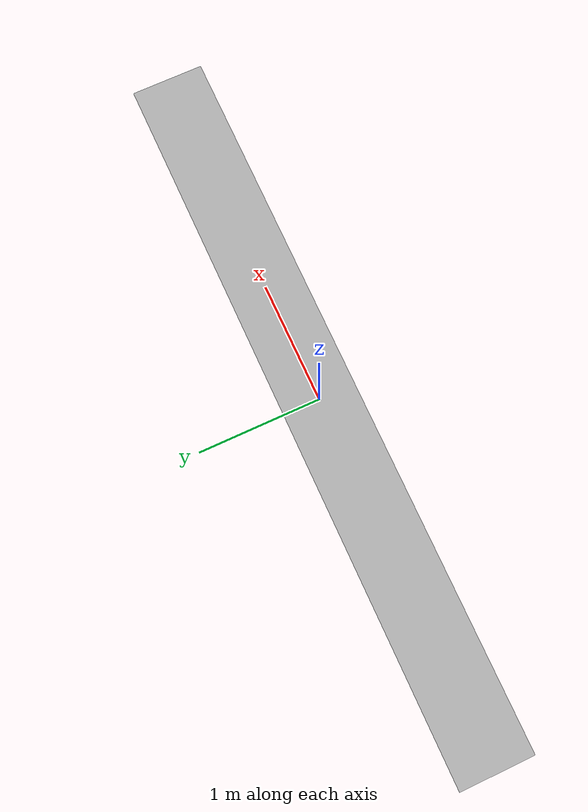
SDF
<?xml version="1.0" ?>
<sdf version="1.6">
  <model name="straight_lane">
    <static>true</static>
    <link name="link">
      <visual name="visual">
        <geometry>
          <mesh>
            <uri>model://foxy_description/assets/straight_lane/straight_lane.dae</uri>
          </mesh>
        </geometry>
      </visual>
      <collision name="collision">
        <geometry>
          <box>
            <size>6 0.6 0.018</size>
          </box>
        </geometry>
      </collision>
    </link>
  </model>
</sdf>
